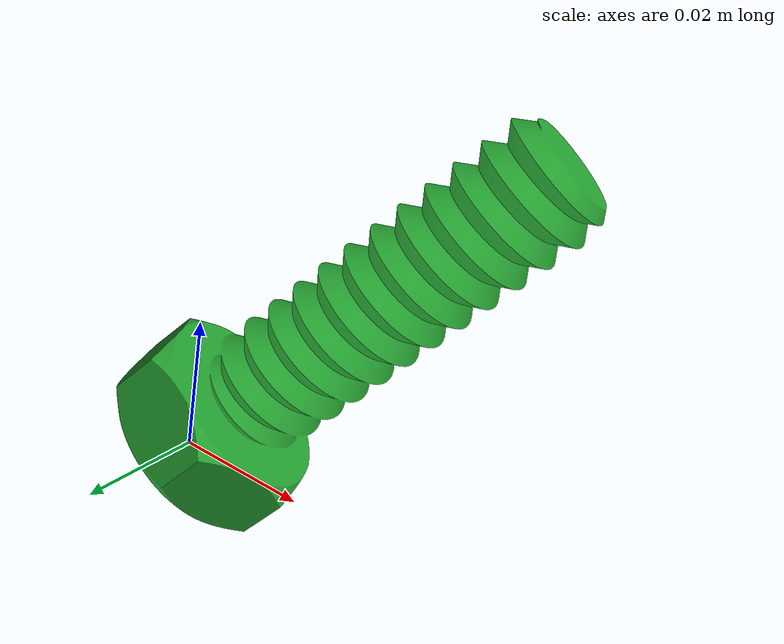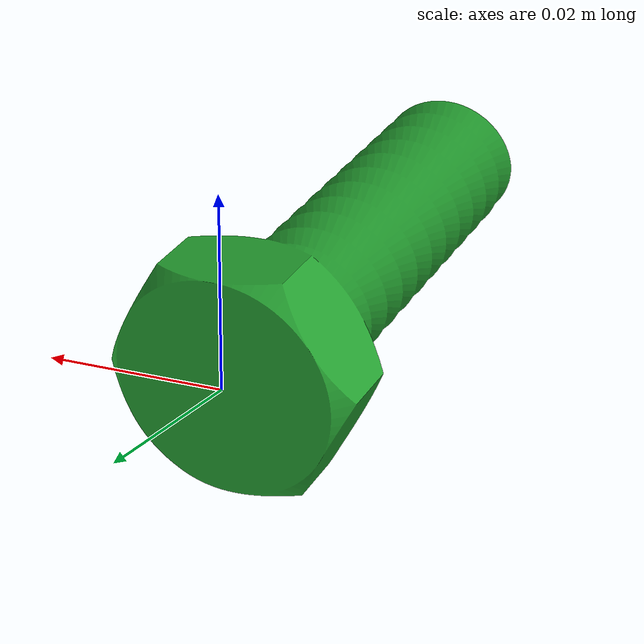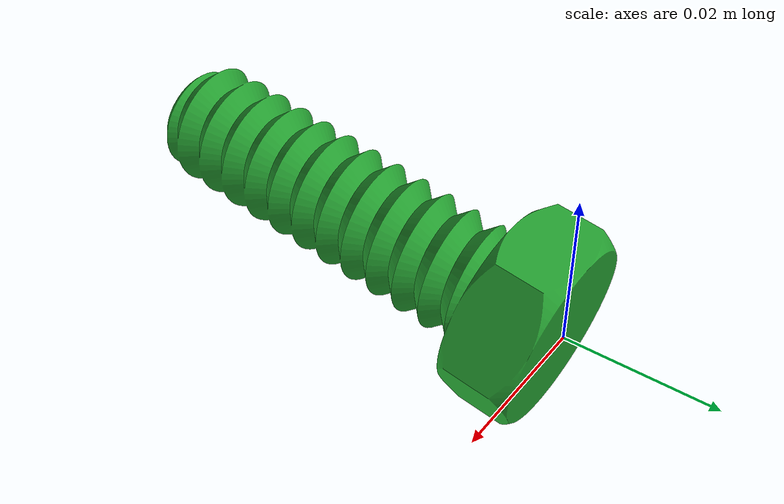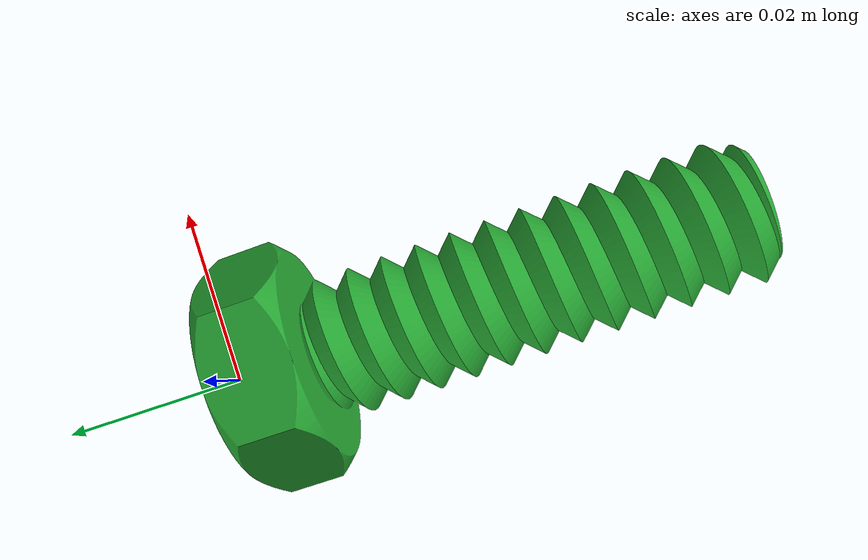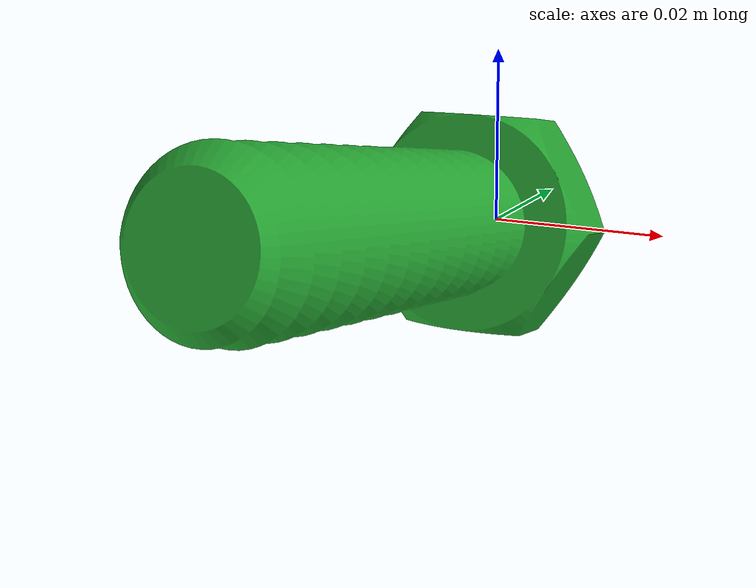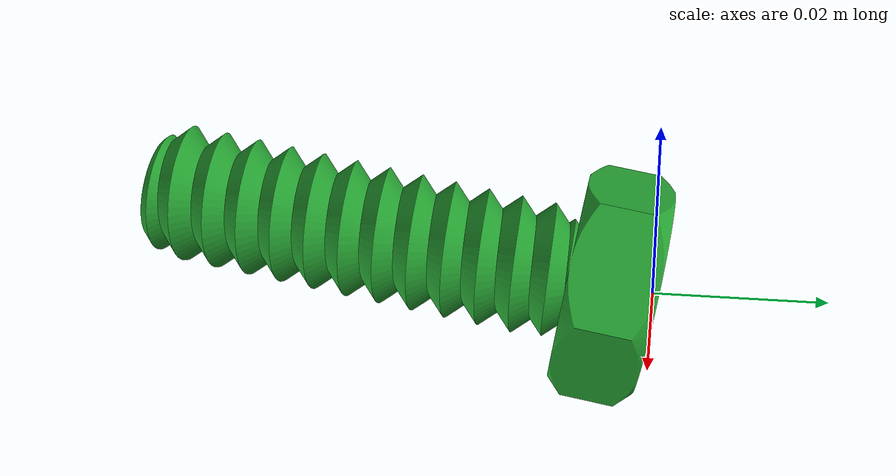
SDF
<?xml version="1.0"?>
<sdf version="1.4">
  <model name="bolt_25x8">
    <static>false</static>
    <link name="link">
      <pose>0 0 0 1.4 0 0</pose>
      <inertial>
        <pose>-1e-10 8.764e-07 0.0232502943 0 0 0</pose>
        <mass>1.3e-06</mass>
        <inertia>
          <ixx>4.60827461384e-09</ixx>
          <ixy>1.436e-17</ixy>
          <ixz>2.99287013e-12</ixz>
          <iyy>4.60849541019e-09</iyy>
          <iyz>-1.2976397e-13</iyz>
          <izz>5.8248750545e-10</izz>
        </inertia>
      </inertial>

      <visual name="visual">
        <geometry>
          <mesh>
            <uri>model://bolt_25x8/meshes/bolt_25x8.stl</uri>
          </mesh>
        </geometry>
        <material>
          <script>
            <uri>file://media/materials/scripts/gazebo.material</uri>
            <name>Gazebo/Green</name>
          </script>
        </material>
      </visual>

      <collision name="collision">
        <geometry>
          <mesh>
            <uri>model://bolt_25x8/meshes/bolt_25x8.stl</uri>
          </mesh>
        </geometry>
      </collision>
    </link>
  </model>
</sdf>
